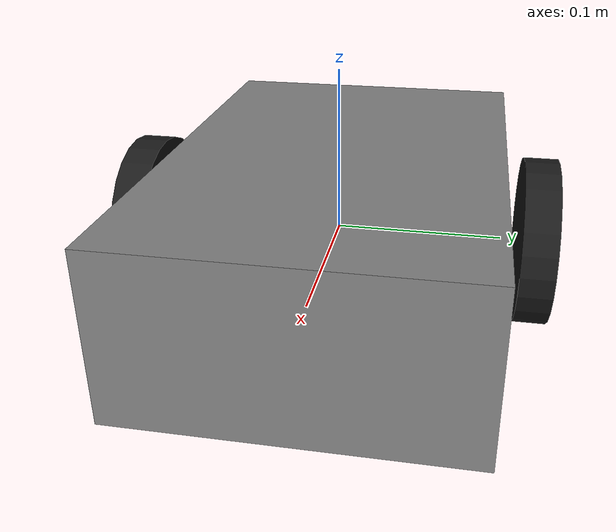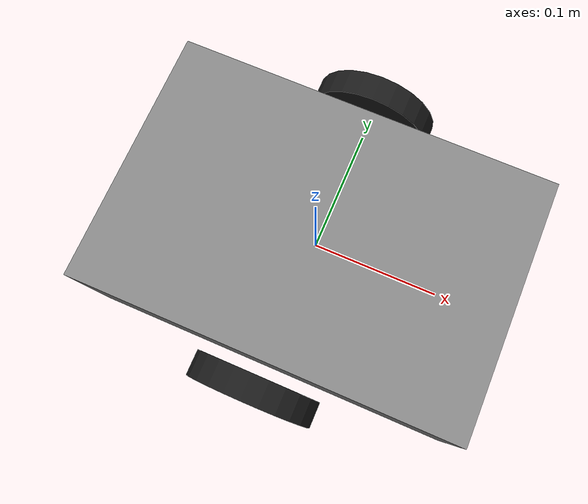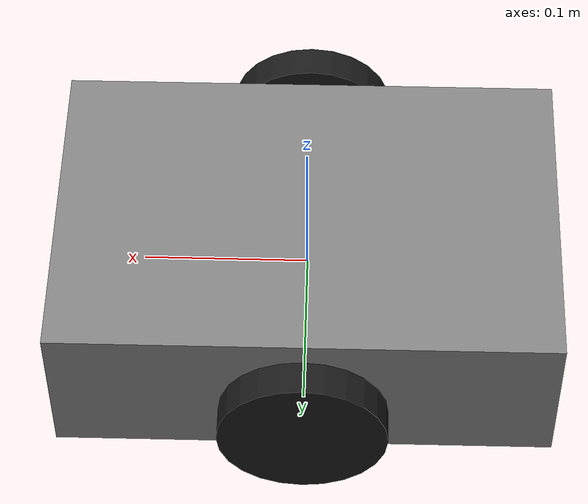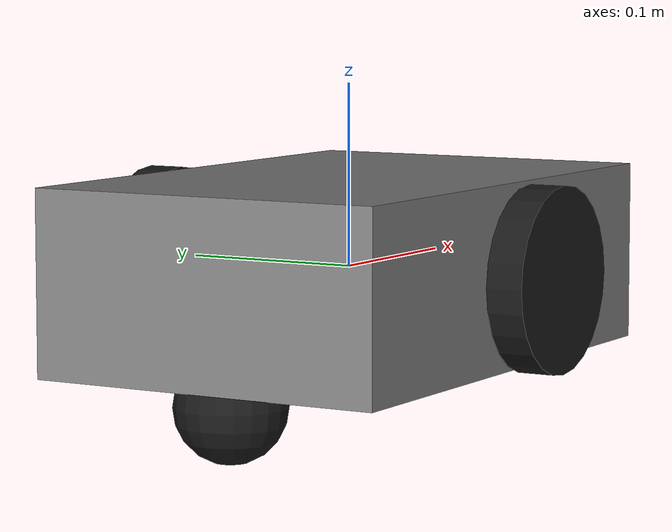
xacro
<?xml version="1.0"?>
<robot name="diff_drive_robot" xmlns:xacro="http://www.ros.org/wiki/xacro">
    <xacro:property name="chassis_size" value="0.3 0.2 0.1"/>
    <xacro:property name="chassis_mass" value="1.5"/>
    <xacro:property name="wheel_radius" value="0.05"/>
    <xacro:property name="wheel_length" value="0.02"/>
    <xacro:property name="wheel_mass" value="0.05"/>
    <xacro:property name="wheel_y_offset" value="0.12"/>
    <xacro:property name="caster_radius" value="0.03"/>
    <xacro:property name="caster_mass" value="0.02"/>
    <link name="base_link">
        <visual>
            <geometry>
                <box size="${chassis_size}"/>
            </geometry>
            <material name="grey">
                <color rgba="0.5 0.5 0.5 1"/>
            </material>
        </visual>
        <collision>
            <geometry>
                <box size="${chassis_size}"/>
            </geometry>
        </collision>
        <inertial>
            <mass value="${chassis_mass}"/>
            <inertia ixx="0.00625" ixy="0.0" ixz="0.0" iyy="0.0125" iyz="0.0" izz="0.01625"/>
        </inertial>
    </link>
    <xacro:macro name="wheel" params="prefix reflect">
        <link name="${prefix}_wheel_link">
            <visual>
                <geometry>
                    <cylinder radius="${wheel_radius}" length="${wheel_length}"/>
                </geometry>
                <material name="black">
                    <color rgba="0.1 0.1 0.1 1"/>
                </material>
                <origin rpy="1.5708 0.0 0.0"/>
            </visual>
            <collision>
                <geometry>
                    <cylinder radius="${wheel_radius}" length="${wheel_length}"/>
                </geometry>
                <origin rpy="1.5708 0.0 0.0"/>
            </collision>
            <inertial>
                <origin rpy="1.5708 0.0 0.0"/>
                <mass value="${wheel_mass}"/>
                <inertia ixx="0.0000329" ixy="0.0" ixz="0.0" iyy="0.0000625" iyz="0.0" izz="0.0000329"/>
            </inertial>
        </link>
        <joint name="${prefix}_wheel_joint" type="continuous">
            <parent link="base_link"/>
            <child link="${prefix}_wheel_link"/>
            <origin xyz="0 ${reflect * wheel_y_offset} 0"/>
            <axis xyz="0 1 0"/>
        </joint>
    </xacro:macro>
    <xacro:wheel prefix="left" reflect="1"/>
    <xacro:wheel prefix="right" reflect="-1"/>
    <link name="caster_wheel_link">
        <visual>
            <geometry>
                <sphere radius="${caster_radius}"/>
            </geometry>
            <material name="black">
                <color rgba="0.1 0.1 0.1 1"/>
            </material>
        </visual>
        <collision>
            <geometry>
                <sphere radius="${caster_radius}"/>
            </geometry>
        </collision>
        <inertial>
            <mass value="${caster_mass}"/>
            <inertia ixx="0.0000072" iyy="0.0000072" izz="0.0000072" ixy="0" ixz="0" iyz="0"/>
        </inertial>
    </link>
    <joint name="caster_wheel_joint" type="fixed">
        <parent link="base_link"/>
        <child link="caster_wheel_link"/>
        <origin xyz="-0.12 0 -0.06"/>
    </joint>
</robot>
